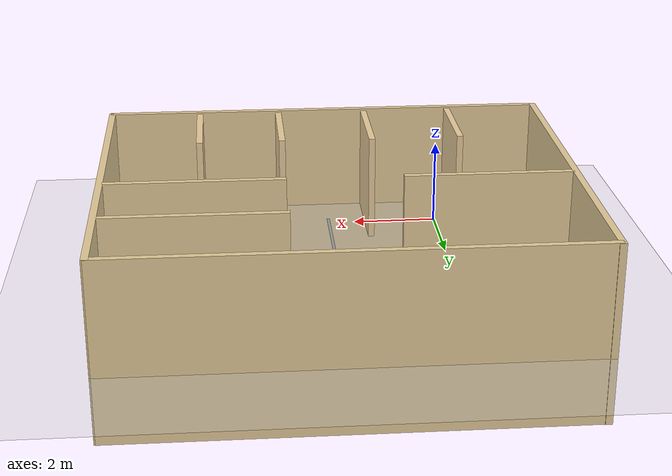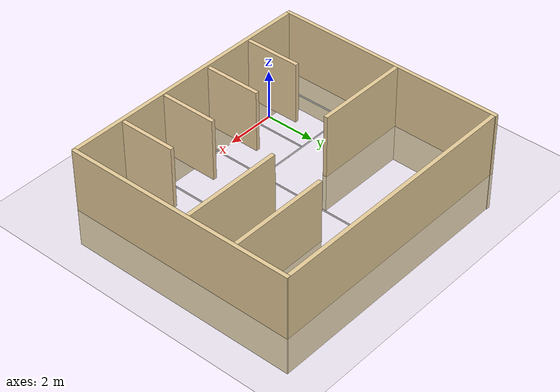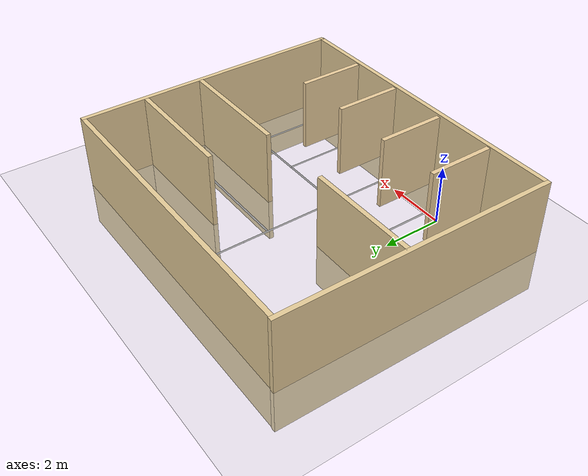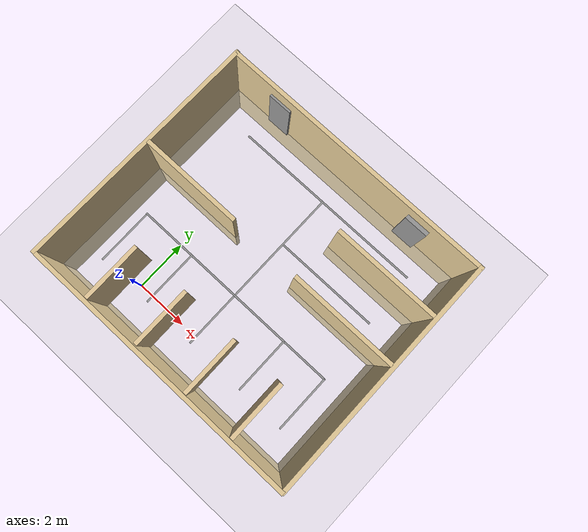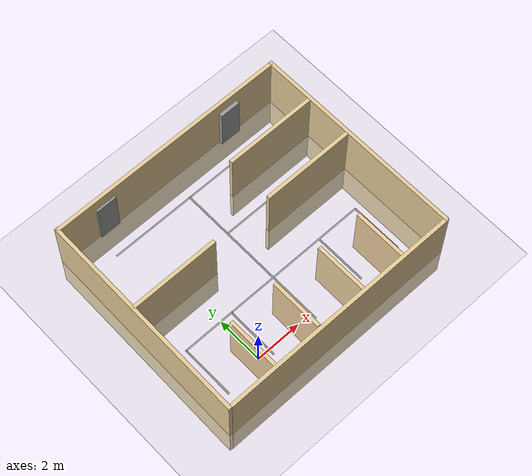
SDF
<?xml version="1.0"?>
<sdf version="1.6">
  <world name="default">

    <include>
      <uri>model://ground_plane</uri>
    </include>

    <include>
      <uri>model://sun</uri>
    </include>

    <scene>
      <shadows>false</shadows>
    </scene>

    <gui fullscreen='0'>
      <camera name='user_camera'>
        <pose frame=''>0.319654 -0.235002 9.29441 0 1.5138 0.009599</pose>
        <view_controller>orbit</view_controller>
        <projection_type>perspective</projection_type>
      </camera>
    </gui>

    <physics type="ode">
      <real_time_update_rate>1000.0</real_time_update_rate>
      <max_step_size>0.001</max_step_size>
      <real_time_factor>1</real_time_factor>
      <ode>
        <solver>
          <type>quick</type>
          <iters>150</iters>
          <precon_iters>0</precon_iters>
          <sor>1.400000</sor>
          <use_dynamic_moi_rescaling>1</use_dynamic_moi_rescaling>
        </solver>
        <constraints>
          <cfm>0.00001</cfm>
          <erp>0.2</erp>
          <contact_max_correcting_vel>2000.000000</contact_max_correcting_vel>
          <contact_surface_layer>0.01000</contact_surface_layer>
        </constraints>
      </ode>
    </physics>

    <model name="HospitalWalls">
      <static>1</static>
      <include>
        <uri>model://HospitalWalls</uri>
      </include>
    </model>

    <model name="HospitalTrack">
      <static>1</static>
      <include>
        <uri>model://HospitalTrack</uri>
      </include>
    </model>

  </world>
</sdf>

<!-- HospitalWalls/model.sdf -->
<sdf version='1.7'>
  <model name='HospitalWalls'>
    <link name='HospitalWalls::hospital_test::hospital_test::hospital_test::hospital_test::hospital_test::Door_0'>
      <pose>-0.47628 7.70771 0 0 -0 0</pose>
      <self_collide>0</self_collide>
      <enable_wind>0</enable_wind>
      <kinematic>0</kinematic>
      <visual name='Door_0_Visual'>
        <pose>0 0 1 0 -0 0</pose>
        <geometry>
          <box>
            <size>0.9 0.17 2</size>
          </box>
        </geometry>
        <material>
          <script>
            <uri>file://media/materials/scripts/gazebo.material</uri>
            <name>Gazebo/Grey</name>
          </script>
          <shader type='pixel'/>
        </material>
        <transparency>0</transparency>
        <cast_shadows>1</cast_shadows>
      </visual>
      <collision name='Door_0_Collision'>
        <laser_retro>0</laser_retro>
        <max_contacts>10</max_contacts>
        <pose>0 0 1 0 -0 0</pose>
        <geometry>
          <box>
            <size>0.9 0.17 2</size>
          </box>
        </geometry>
        <surface>
          <friction>
            <ode>
              <mu>1</mu>
              <mu2>1</mu2>
              <fdir1>0 0 0</fdir1>
              <slip1>0</slip1>
              <slip2>0</slip2>
            </ode>
            <torsional>
              <coefficient>1</coefficient>
              <patch_radius>0</patch_radius>
              <surface_radius>0</surface_radius>
              <use_patch_radius>1</use_patch_radius>
              <ode>
                <slip>0</slip>
              </ode>
            </torsional>
          </friction>
          <bounce>
            <restitution_coefficient>0</restitution_coefficient>
            <threshold>1e+06</threshold>
          </bounce>
          <contact>
            <collide_without_contact>0</collide_without_contact>
            <collide_without_contact_bitmask>1</collide_without_contact_bitmask>
            <collide_bitmask>1</collide_bitmask>
            <ode>
              <soft_cfm>0</soft_cfm>
              <soft_erp>0.2</soft_erp>
              <kp>1e+13</kp>
              <kd>1</kd>
              <max_vel>0.01</max_vel>
              <min_depth>0</min_depth>
            </ode>
            <bullet>
              <split_impulse>1</split_impulse>
              <split_impulse_penetration_threshold>-0.01</split_impulse_penetration_threshold>
              <soft_cfm>0</soft_cfm>
              <soft_erp>0.2</soft_erp>
              <kp>1e+13</kp>
              <kd>1</kd>
            </bullet>
          </contact>
        </surface>
      </collision>
    </link>
    <link name='HospitalWalls::hospital_test::hospital_test::hospital_test::hospital_test::Wall_15_clone'>
      <pose>5.78046 -0.214578 0 0 -0 1.5708</pose>
      <self_collide>0</self_collide>
      <enable_wind>0</enable_wind>
      <kinematic>0</kinematic>
      <visual name='Wall_15_Visual'>
        <pose>0 0 1.25 0 -0 0</pose>
        <geometry>
          <box>
            <size>2.25 0.15 2.5</size>
          </box>
        </geometry>
        <material>
          <script>
            <uri>file://media/materials/scripts/gazebo.material</uri>
            <name>Gazebo/Grey</name>
          </script>
          <ambient>0.921569 0.807843 0.615686 1</ambient>
          <shader type='pixel'/>
        </material>
        <meta>
          <layer>0</layer>
        </meta>
        <transparency>0</transparency>
        <cast_shadows>1</cast_shadows>
      </visual>
      <collision name='Wall_15_Collision'>
        <laser_retro>0</laser_retro>
        <max_contacts>10</max_contacts>
        <pose>0 0 1.25 0 -0 0</pose>
        <geometry>
          <box>
            <size>2.25 0.15 2.5</size>
          </box>
        </geometry>
        <surface>
          <friction>
            <ode>
              <mu>1</mu>
              <mu2>1</mu2>
              <fdir1>0 0 0</fdir1>
              <slip1>0</slip1>
              <slip2>0</slip2>
            </ode>
            <torsional>
              <coefficient>1</coefficient>
              <patch_radius>0</patch_radius>
              <surface_radius>0</surface_radius>
              <use_patch_radius>1</use_patch_radius>
              <ode>
                <slip>0</slip>
              </ode>
            </torsional>
          </friction>
          <bounce>
            <restitution_coefficient>0</restitution_coefficient>
            <threshold>1e+06</threshold>
          </bounce>
          <contact>
            <collide_without_contact>0</collide_without_contact>
            <collide_without_contact_bitmask>1</collide_without_contact_bitmask>
            <collide_bitmask>1</collide_bitmask>
            <ode>
              <soft_cfm>0</soft_cfm>
              <soft_erp>0.2</soft_erp>
              <kp>1e+13</kp>
              <kd>1</kd>
              <max_vel>0.01</max_vel>
              <min_depth>0</min_depth>
            </ode>
            <bullet>
              <split_impulse>1</split_impulse>
              <split_impulse_penetration_threshold>-0.01</split_impulse_penetration_threshold>
              <soft_cfm>0</soft_cfm>
              <soft_erp>0.2</soft_erp>
              <kp>1e+13</kp>
              <kd>1</kd>
            </bullet>
          </contact>
        </surface>
      </collision>
    </link>
    <link name='HospitalWalls::hospital_test::hospital_test::hospital_test::hospital_test::hospital_test::Door_1'>
      <pose>5.60707 7.63831 0 0 -0 0</pose>
      <self_collide>0</self_collide>
      <enable_wind>0</enable_wind>
      <kinematic>0</kinematic>
      <visual name='Door_1_Visual'>
        <pose>0 0 1 0 -0 0</pose>
        <geometry>
          <box>
            <size>0.9 0.17 2</size>
          </box>
        </geometry>
        <material>
          <script>
            <uri>file://media/materials/scripts/gazebo.material</uri>
            <name>Gazebo/Grey</name>
          </script>
          <shader type='pixel'/>
        </material>
        <transparency>0</transparency>
        <cast_shadows>1</cast_shadows>
      </visual>
      <collision name='Door_1_Collision'>
        <laser_retro>0</laser_retro>
        <max_contacts>10</max_contacts>
        <pose>0 0 1 0 -0 0</pose>
        <geometry>
          <box>
            <size>0.9 0.17 2</size>
          </box>
        </geometry>
        <surface>
          <friction>
            <ode>
              <mu>1</mu>
              <mu2>1</mu2>
              <fdir1>0 0 0</fdir1>
              <slip1>0</slip1>
              <slip2>0</slip2>
            </ode>
            <torsional>
              <coefficient>1</coefficient>
              <patch_radius>0</patch_radius>
              <surface_radius>0</surface_radius>
              <use_patch_radius>1</use_patch_radius>
              <ode>
                <slip>0</slip>
              </ode>
            </torsional>
          </friction>
          <bounce>
            <restitution_coefficient>0</restitution_coefficient>
            <threshold>1e+06</threshold>
          </bounce>
          <contact>
            <collide_without_contact>0</collide_without_contact>
            <collide_without_contact_bitmask>1</collide_without_contact_bitmask>
            <collide_bitmask>1</collide_bitmask>
            <ode>
              <soft_cfm>0</soft_cfm>
              <soft_erp>0.2</soft_erp>
              <kp>1e+13</kp>
              <kd>1</kd>
              <max_vel>0.01</max_vel>
              <min_depth>0</min_depth>
            </ode>
            <bullet>
              <split_impulse>1</split_impulse>
              <split_impulse_penetration_threshold>-0.01</split_impulse_penetration_threshold>
              <soft_cfm>0</soft_cfm>
              <soft_erp>0.2</soft_erp>
              <kp>1e+13</kp>
              <kd>1</kd>
            </bullet>
          </contact>
        </surface>
      </collision>
    </link>
    <link name='HospitalWalls::hospital_test::hospital_test::hospital_test::hospital_test::hospital_test::Wall_10'>
      <pose>-0.455438 -0.216971 0 0 -0 1.5708</pose>
      <self_collide>0</self_collide>
      <enable_wind>0</enable_wind>
      <kinematic>0</kinematic>
      <visual name='Wall_10_Visual'>
        <pose>0 0 1.25 0 -0 0</pose>
        <geometry>
          <box>
            <size>2.25 0.15 2.5</size>
          </box>
        </geometry>
        <material>
          <script>
            <uri>file://media/materials/scripts/gazebo.material</uri>
            <name>Gazebo/Grey</name>
          </script>
          <ambient>0.921569 0.807843 0.615686 1</ambient>
          <shader type='pixel'/>
        </material>
        <meta>
          <layer>0</layer>
        </meta>
        <transparency>0</transparency>
        <cast_shadows>1</cast_shadows>
      </visual>
      <collision name='Wall_10_Collision'>
        <laser_retro>0</laser_retro>
        <max_contacts>10</max_contacts>
        <pose>0 0 1.25 0 -0 0</pose>
        <geometry>
          <box>
            <size>2.25 0.15 2.5</size>
          </box>
        </geometry>
        <surface>
          <friction>
            <ode>
              <mu>1</mu>
              <mu2>1</mu2>
              <fdir1>0 0 0</fdir1>
              <slip1>0</slip1>
              <slip2>0</slip2>
            </ode>
            <torsional>
              <coefficient>1</coefficient>
              <patch_radius>0</patch_radius>
              <surface_radius>0</surface_radius>
              <use_patch_radius>1</use_patch_radius>
              <ode>
                <slip>0</slip>
              </ode>
            </torsional>
          </friction>
          <bounce>
            <restitution_coefficient>0</restitution_coefficient>
            <threshold>1e+06</threshold>
          </bounce>
          <contact>
            <collide_without_contact>0</collide_without_contact>
            <collide_without_contact_bitmask>1</collide_without_contact_bitmask>
            <collide_bitmask>1</collide_bitmask>
            <ode>
              <soft_cfm>0</soft_cfm>
              <soft_erp>0.2</soft_erp>
              <kp>1e+13</kp>
              <kd>1</kd>
              <max_vel>0.01</max_vel>
              <min_depth>0</min_depth>
            </ode>
            <bullet>
              <split_impulse>1</split_impulse>
              <split_impulse_penetration_threshold>-0.01</split_impulse_penetration_threshold>
              <soft_cfm>0</soft_cfm>
              <soft_erp>0.2</soft_erp>
              <kp>1e+13</kp>
              <kd>1</kd>
            </bullet>
          </contact>
        </surface>
      </collision>
    </link>
    <link name='HospitalWalls::hospital_test::hospital_test::hospital_test::hospital_test::hospital_test::Wall_12'>
      <pose>1.67297 -0.170712 0 0 -0 1.5708</pose>
      <self_collide>0</self_collide>
      <enable_wind>0</enable_wind>
      <kinematic>0</kinematic>
      <visual name='Wall_12_Visual'>
        <pose>0 0 1.25 0 -0 0</pose>
        <geometry>
          <box>
            <size>2.25 0.15 2.5</size>
          </box>
        </geometry>
        <material>
          <script>
            <uri>file://media/materials/scripts/gazebo.material</uri>
            <name>Gazebo/Grey</name>
          </script>
          <ambient>0.921569 0.807843 0.615686 1</ambient>
          <shader type='pixel'/>
        </material>
        <meta>
          <layer>0</layer>
        </meta>
        <transparency>0</transparency>
        <cast_shadows>1</cast_shadows>
      </visual>
      <collision name='Wall_12_Collision'>
        <laser_retro>0</laser_retro>
        <max_contacts>10</max_contacts>
        <pose>0 0 1.25 0 -0 0</pose>
        <geometry>
          <box>
            <size>2.25 0.15 2.5</size>
          </box>
        </geometry>
        <surface>
          <friction>
            <ode>
              <mu>1</mu>
              <mu2>1</mu2>
              <fdir1>0 0 0</fdir1>
              <slip1>0</slip1>
              <slip2>0</slip2>
            </ode>
            <torsional>
              <coefficient>1</coefficient>
              <patch_radius>0</patch_radius>
              <surface_radius>0</surface_radius>
              <use_patch_radius>1</use_patch_radius>
              <ode>
                <slip>0</slip>
              </ode>
            </torsional>
          </friction>
          <bounce>
            <restitution_coefficient>0</restitution_coefficient>
            <threshold>1e+06</threshold>
          </bounce>
          <contact>
            <collide_without_contact>0</collide_without_contact>
            <collide_without_contact_bitmask>1</collide_without_contact_bitmask>
            <collide_bitmask>1</collide_bitmask>
            <ode>
              <soft_cfm>0</soft_cfm>
              <soft_erp>0.2</soft_erp>
              <kp>1e+13</kp>
              <kd>1</kd>
              <max_vel>0.01</max_vel>
              <min_depth>0</min_depth>
            </ode>
            <bullet>
              <split_impulse>1</split_impulse>
              <split_impulse_penetration_threshold>-0.01</split_impulse_penetration_threshold>
              <soft_cfm>0</soft_cfm>
              <soft_erp>0.2</soft_erp>
              <kp>1e+13</kp>
              <kd>1</kd>
            </bullet>
          </contact>
        </surface>
      </collision>
    </link>
    <link name='HospitalWalls::hospital_test::hospital_test::hospital_test::hospital_test::hospital_test::Wall_15'>
      <pose>3.82148 -0.216971 0 0 -0 1.5708</pose>
      <self_collide>0</self_collide>
      <enable_wind>0</enable_wind>
      <kinematic>0</kinematic>
      <gravity>1</gravity>
      <inertial>
        <mass>1</mass>
        <pose>0 0 0 0 -0 0</pose>
        <inertia>
          <ixx>1</ixx>
          <ixy>0</ixy>
          <ixz>0</ixz>
          <iyy>1</iyy>
          <iyz>0</iyz>
          <izz>1</izz>
        </inertia>
      </inertial>
      <visual name='Wall_15_Visual'>
        <pose>0 0 1.25 0 -0 0</pose>
        <geometry>
          <box>
            <size>2.25 0.15 2.5</size>
          </box>
        </geometry>
        <material>
          <script>
            <uri>file://media/materials/scripts/gazebo.material</uri>
            <name>Gazebo/Grey</name>
          </script>
          <ambient>0.922 0.808 0.616 1</ambient>
          <shader type='pixel'>
            <normal_map>__default__</normal_map>
          </shader>
        </material>
        <meta>
          <layer>0</layer>
        </meta>
        <transparency>0</transparency>
        <cast_shadows>1</cast_shadows>
      </visual>
      <collision name='Wall_15_Collision'>
        <laser_retro>0</laser_retro>
        <max_contacts>10</max_contacts>
        <pose>0 0 1.25 0 -0 0</pose>
        <geometry>
          <box>
            <size>2.25 0.15 2.5</size>
          </box>
        </geometry>
        <surface>
          <friction>
            <ode>
              <mu>1</mu>
              <mu2>1</mu2>
              <fdir1>0 0 0</fdir1>
              <slip1>0</slip1>
              <slip2>0</slip2>
            </ode>
            <torsional>
              <coefficient>1</coefficient>
              <patch_radius>0</patch_radius>
              <surface_radius>0</surface_radius>
              <use_patch_radius>1</use_patch_radius>
              <ode>
                <slip>0</slip>
              </ode>
            </torsional>
          </friction>
          <bounce>
            <restitution_coefficient>0</restitution_coefficient>
            <threshold>1e+06</threshold>
          </bounce>
          <contact>
            <collide_without_contact>0</collide_without_contact>
            <collide_without_contact_bitmask>1</collide_without_contact_bitmask>
            <collide_bitmask>1</collide_bitmask>
            <ode>
              <soft_cfm>0</soft_cfm>
              <soft_erp>0.2</soft_erp>
              <kp>1e+13</kp>
              <kd>1</kd>
              <max_vel>0.01</max_vel>
              <min_depth>0</min_depth>
            </ode>
            <bullet>
              <split_impulse>1</split_impulse>
              <split_impulse_penetration_threshold>-0.01</split_impulse_penetration_threshold>
              <soft_cfm>0</soft_cfm>
              <soft_erp>0.2</soft_erp>
              <kp>1e+13</kp>
              <kd>1</kd>
            </bullet>
          </contact>
        </surface>
      </collision>
    </link>
    <link name='HospitalWalls::link_0'>
      <inertial>
        <mass>6.75235</mass>
        <inertia>
          <ixx>9.38568</ixx>
          <ixy>0</ixy>
          <ixz>0</ixz>
          <iyy>72.7317</iyy>
          <iyz>0</iyz>
          <izz>63.3734</izz>
        </inertia>
        <pose>0 0 0 0 -0 0</pose>
      </inertial>
      <pose>2.68996 -1.41359 0.5 0 -0 0</pose>
      <self_collide>0</self_collide>
      <enable_wind>0</enable_wind>
      <kinematic>0</kinematic>
      <gravity>1</gravity>
      <visual name='visual'>
        <pose>0 0 0 0 -0 0</pose>
        <geometry>
          <box>
            <size>10.6113 0.156015 4.08112</size>
          </box>
        </geometry>
        <material>
          <lighting>1</lighting>
          <script>
            <uri>file://media/materials/scripts/gazebo.material</uri>
            <name>Gazebo/Grey</name>
          </script>
          <shader type='pixel'>
            <normal_map>__default__</normal_map>
          </shader>
          <ambient>0.9 0.8 0.6 1</ambient>
          <diffuse>0.7 0.7 0.7 1</diffuse>
          <specular>0.01 0.01 0.01 1</specular>
          <emissive>0 0 0 1</emissive>
        </material>
        <transparency>0</transparency>
        <cast_shadows>1</cast_shadows>
      </visual>
      <collision name='collision'>
        <laser_retro>0</laser_retro>
        <max_contacts>10</max_contacts>
        <pose>0 0 0 0 -0 0</pose>
        <geometry>
          <box>
            <size>10.6113 0.156015 4.08112</size>
          </box>
        </geometry>
        <surface>
          <friction>
            <ode>
              <mu>1</mu>
              <mu2>1</mu2>
              <fdir1>0 0 0</fdir1>
              <slip1>0</slip1>
              <slip2>0</slip2>
            </ode>
            <torsional>
              <coefficient>1</coefficient>
              <patch_radius>0</patch_radius>
              <surface_radius>0</surface_radius>
              <use_patch_radius>1</use_patch_radius>
              <ode>
                <slip>0</slip>
              </ode>
            </torsional>
          </friction>
          <bounce>
            <restitution_coefficient>0</restitution_coefficient>
            <threshold>1e+06</threshold>
          </bounce>
          <contact>
            <collide_without_contact>0</collide_without_contact>
            <collide_without_contact_bitmask>1</collide_without_contact_bitmask>
            <collide_bitmask>1</collide_bitmask>
            <ode>
              <soft_cfm>0</soft_cfm>
              <soft_erp>0.2</soft_erp>
              <kp>1e+13</kp>
              <kd>1</kd>
              <max_vel>0.01</max_vel>
              <min_depth>0</min_depth>
            </ode>
            <bullet>
              <split_impulse>1</split_impulse>
              <split_impulse_penetration_threshold>-0.01</split_impulse_penetration_threshold>
              <soft_cfm>0</soft_cfm>
              <soft_erp>0.2</soft_erp>
              <kp>1e+13</kp>
              <kd>1</kd>
            </bullet>
          </contact>
        </surface>
      </collision>
    </link>
    <link name='link_0_clone'>
      <inertial>
        <mass>6.75235</mass>
        <inertia>
          <ixx>9.38568</ixx>
          <ixy>0</ixy>
          <ixz>0</ixz>
          <iyy>72.7317</iyy>
          <iyz>0</iyz>
          <izz>63.3734</izz>
        </inertia>
        <pose>0 0 0 0 -0 0</pose>
      </inertial>
      <pose>-2.63808 3.20368 0.5 0 0 -1.57962</pose>
      <self_collide>0</self_collide>
      <enable_wind>0</enable_wind>
      <kinematic>0</kinematic>
      <gravity>1</gravity>
      <visual name='visual'>
        <pose>0 0 0 0 -0 0</pose>
        <geometry>
          <box>
            <size>9.36494 0.156015 4.08112</size>
          </box>
        </geometry>
        <material>
          <lighting>1</lighting>
          <script>
            <uri>file://media/materials/scripts/gazebo.material</uri>
            <name>Gazebo/Grey</name>
          </script>
          <shader type='pixel'>
            <normal_map>__default__</normal_map>
          </shader>
          <ambient>0.9 0.8 0.6 1</ambient>
          <diffuse>0.7 0.7 0.7 1</diffuse>
          <specular>0.01 0.01 0.01 1</specular>
          <emissive>0 0 0 1</emissive>
        </material>
        <transparency>0</transparency>
        <cast_shadows>1</cast_shadows>
      </visual>
      <collision name='collision'>
        <laser_retro>0</laser_retro>
        <max_contacts>10</max_contacts>
        <pose>0 0 0 0 -0 0</pose>
        <geometry>
          <box>
            <size>9.36494 0.156015 4.08112</size>
          </box>
        </geometry>
        <surface>
          <friction>
            <ode>
              <mu>1</mu>
              <mu2>1</mu2>
              <fdir1>0 0 0</fdir1>
              <slip1>0</slip1>
              <slip2>0</slip2>
            </ode>
            <torsional>
              <coefficient>1</coefficient>
              <patch_radius>0</patch_radius>
              <surface_radius>0</surface_radius>
              <use_patch_radius>1</use_patch_radius>
              <ode>
                <slip>0</slip>
              </ode>
            </torsional>
          </friction>
          <bounce>
            <restitution_coefficient>0</restitution_coefficient>
            <threshold>1e+06</threshold>
          </bounce>
          <contact>
            <collide_without_contact>0</collide_without_contact>
            <collide_without_contact_bitmask>1</collide_without_contact_bitmask>
            <collide_bitmask>1</collide_bitmask>
            <ode>
              <soft_cfm>0</soft_cfm>
              <soft_erp>0.2</soft_erp>
              <kp>1e+13</kp>
              <kd>1</kd>
              <max_vel>0.01</max_vel>
              <min_depth>0</min_depth>
            </ode>
            <bullet>
              <split_impulse>1</split_impulse>
              <split_impulse_penetration_threshold>-0.01</split_impulse_penetration_threshold>
              <soft_cfm>0</soft_cfm>
              <soft_erp>0.2</soft_erp>
              <kp>1e+13</kp>
              <kd>1</kd>
            </bullet>
          </contact>
        </surface>
      </collision>
    </link>
    <link name='link_0_clone_0'>
      <inertial>
        <mass>6.75235</mass>
        <inertia>
          <ixx>9.38568</ixx>
          <ixy>0</ixy>
          <ixz>0</ixz>
          <iyy>72.7317</iyy>
          <iyz>0</iyz>
          <izz>63.3734</izz>
        </inertia>
        <pose>0 0 0 0 -0 0</pose>
      </inertial>
      <pose>-0.682959 3.62609 0.5 0 -0 0</pose>
      <self_collide>0</self_collide>
      <enable_wind>0</enable_wind>
      <kinematic>0</kinematic>
      <gravity>1</gravity>
      <visual name='visual'>
        <pose>0 0 0 0 -0 0</pose>
        <geometry>
          <box>
            <size>3.83284 0.156015 4.08112</size>
          </box>
        </geometry>
        <material>
          <lighting>1</lighting>
          <script>
            <uri>file://media/materials/scripts/gazebo.material</uri>
            <name>Gazebo/Grey</name>
          </script>
          <shader type='pixel'>
            <normal_map>__default__</normal_map>
          </shader>
          <ambient>0.9 0.8 0.6 1</ambient>
          <diffuse>0.7 0.7 0.7 1</diffuse>
          <specular>0.01 0.01 0.01 1</specular>
          <emissive>0 0 0 1</emissive>
        </material>
        <transparency>0</transparency>
        <cast_shadows>1</cast_shadows>
      </visual>
      <collision name='collision'>
        <laser_retro>0</laser_retro>
        <max_contacts>10</max_contacts>
        <pose>0 0 0 0 -0 0</pose>
        <geometry>
          <box>
            <size>3.83284 0.156015 4.08112</size>
          </box>
        </geometry>
        <surface>
          <friction>
            <ode>
              <mu>1</mu>
              <mu2>1</mu2>
              <fdir1>0 0 0</fdir1>
              <slip1>0</slip1>
              <slip2>0</slip2>
            </ode>
            <torsional>
              <coefficient>1</coefficient>
              <patch_radius>0</patch_radius>
              <surface_radius>0</surface_radius>
              <use_patch_radius>1</use_patch_radius>
              <ode>
                <slip>0</slip>
              </ode>
            </torsional>
          </friction>
          <bounce>
            <restitution_coefficient>0</restitution_coefficient>
            <threshold>1e+06</threshold>
          </bounce>
          <contact>
            <collide_without_contact>0</collide_without_contact>
            <collide_without_contact_bitmask>1</collide_without_contact_bitmask>
            <collide_bitmask>1</collide_bitmask>
            <ode>
              <soft_cfm>0</soft_cfm>
              <soft_erp>0.2</soft_erp>
              <kp>1e+13</kp>
              <kd>1</kd>
              <max_vel>0.01</max_vel>
              <min_depth>0</min_depth>
            </ode>
            <bullet>
              <split_impulse>1</split_impulse>
              <split_impulse_penetration_threshold>-0.01</split_impulse_penetration_threshold>
              <soft_cfm>0</soft_cfm>
              <soft_erp>0.2</soft_erp>
              <kp>1e+13</kp>
              <kd>1</kd>
            </bullet>
          </contact>
        </surface>
      </collision>
    </link>
    <link name='link_0_clone_1'>
      <inertial>
        <mass>6.75235</mass>
        <inertia>
          <ixx>9.38568</ixx>
          <ixy>0</ixy>
          <ixz>0</ixz>
          <iyy>72.7317</iyy>
          <iyz>0</iyz>
          <izz>63.3734</izz>
        </inertia>
        <pose>0 0 0 0 -0 0</pose>
      </inertial>
      <pose>5.86558 3.61726 0.5 0 -0 0</pose>
      <self_collide>0</self_collide>
      <enable_wind>0</enable_wind>
      <kinematic>0</kinematic>
      <gravity>1</gravity>
      <visual name='visual'>
        <pose>0 0 0 0 -0 0</pose>
        <geometry>
          <box>
            <size>4.03614 0.156015 4.08112</size>
          </box>
        </geometry>
        <material>
          <lighting>1</lighting>
          <script>
            <uri>file://media/materials/scripts/gazebo.material</uri>
            <name>Gazebo/Grey</name>
          </script>
          <shader type='pixel'>
            <normal_map>__default__</normal_map>
          </shader>
          <ambient>0.9 0.8 0.6 1</ambient>
          <diffuse>0.7 0.7 0.7 1</diffuse>
          <specular>0.01 0.01 0.01 1</specular>
          <emissive>0 0 0 1</emissive>
        </material>
        <transparency>0</transparency>
        <cast_shadows>1</cast_shadows>
      </visual>
      <collision name='collision'>
        <laser_retro>0</laser_retro>
        <max_contacts>10</max_contacts>
        <pose>0 0 0 0 -0 0</pose>
        <geometry>
          <box>
            <size>4.03614 0.156015 4.08112</size>
          </box>
        </geometry>
        <surface>
          <friction>
            <ode>
              <mu>1</mu>
              <mu2>1</mu2>
              <fdir1>0 0 0</fdir1>
              <slip1>0</slip1>
              <slip2>0</slip2>
            </ode>
            <torsional>
              <coefficient>1</coefficient>
              <patch_radius>0</patch_radius>
              <surface_radius>0</surface_radius>
              <use_patch_radius>1</use_patch_radius>
              <ode>
                <slip>0</slip>
              </ode>
            </torsional>
          </friction>
          <bounce>
            <restitution_coefficient>0</restitution_coefficient>
            <threshold>1e+06</threshold>
          </bounce>
          <contact>
            <collide_without_contact>0</collide_without_contact>
            <collide_without_contact_bitmask>1</collide_without_contact_bitmask>
            <collide_bitmask>1</collide_bitmask>
            <ode>
              <soft_cfm>0</soft_cfm>
              <soft_erp>0.2</soft_erp>
              <kp>1e+13</kp>
              <kd>1</kd>
              <max_vel>0.01</max_vel>
              <min_depth>0</min_depth>
            </ode>
            <bullet>
              <split_impulse>1</split_impulse>
              <split_impulse_penetration_threshold>-0.01</split_impulse_penetration_threshold>
              <soft_cfm>0</soft_cfm>
              <soft_erp>0.2</soft_erp>
              <kp>1e+13</kp>
              <kd>1</kd>
            </bullet>
          </contact>
        </surface>
      </collision>
    </link>
    <link name='link_0_clone_2'>
      <inertial>
        <mass>6.75235</mass>
        <inertia>
          <ixx>9.38568</ixx>
          <ixy>0</ixy>
          <ixz>0</ixz>
          <iyy>72.7317</iyy>
          <iyz>0</iyz>
          <izz>63.3734</izz>
        </inertia>
        <pose>0 0 0 0 -0 0</pose>
      </inertial>
      <pose>5.86453 5.63823 0.5 0 -0 0</pose>
      <self_collide>0</self_collide>
      <enable_wind>0</enable_wind>
      <kinematic>0</kinematic>
      <gravity>1</gravity>
      <visual name='visual'>
        <pose>0 0 0 0 -0 0</pose>
        <geometry>
          <box>
            <size>3.99278 0.156015 4.08112</size>
          </box>
        </geometry>
        <material>
          <lighting>1</lighting>
          <script>
            <uri>file://media/materials/scripts/gazebo.material</uri>
            <name>Gazebo/Grey</name>
          </script>
          <shader type='pixel'>
            <normal_map>__default__</normal_map>
          </shader>
          <ambient>0.9 0.8 0.6 1</ambient>
          <diffuse>0.7 0.7 0.7 1</diffuse>
          <specular>0.01 0.01 0.01 1</specular>
          <emissive>0 0 0 1</emissive>
        </material>
        <transparency>0</transparency>
        <cast_shadows>1</cast_shadows>
      </visual>
      <collision name='collision'>
        <laser_retro>0</laser_retro>
        <max_contacts>10</max_contacts>
        <pose>0 0 0 0 -0 0</pose>
        <geometry>
          <box>
            <size>3.99278 0.156015 4.08112</size>
          </box>
        </geometry>
        <surface>
          <friction>
            <ode>
              <mu>1</mu>
              <mu2>1</mu2>
              <fdir1>0 0 0</fdir1>
              <slip1>0</slip1>
              <slip2>0</slip2>
            </ode>
            <torsional>
              <coefficient>1</coefficient>
              <patch_radius>0</patch_radius>
              <surface_radius>0</surface_radius>
              <use_patch_radius>1</use_patch_radius>
              <ode>
                <slip>0</slip>
              </ode>
            </torsional>
          </friction>
          <bounce>
            <restitution_coefficient>0</restitution_coefficient>
            <threshold>1e+06</threshold>
          </bounce>
          <contact>
            <collide_without_contact>0</collide_without_contact>
            <collide_without_contact_bitmask>1</collide_without_contact_bitmask>
            <collide_bitmask>1</collide_bitmask>
            <ode>
              <soft_cfm>0</soft_cfm>
              <soft_erp>0.2</soft_erp>
              <kp>1e+13</kp>
              <kd>1</kd>
              <max_vel>0.01</max_vel>
              <min_depth>0</min_depth>
            </ode>
            <bullet>
              <split_impulse>1</split_impulse>
              <split_impulse_penetration_threshold>-0.01</split_impulse_penetration_threshold>
              <soft_cfm>0</soft_cfm>
              <soft_erp>0.2</soft_erp>
              <kp>1e+13</kp>
              <kd>1</kd>
            </bullet>
          </contact>
        </surface>
      </collision>
    </link>
    <link name='link_0_clone_3'>
      <inertial>
        <mass>6.75235</mass>
        <inertia>
          <ixx>9.38568</ixx>
          <ixy>0</ixy>
          <ixz>0</ixz>
          <iyy>72.7317</iyy>
          <iyz>0</iyz>
          <izz>63.3734</izz>
        </inertia>
        <pose>0 0 0 0 -0 0</pose>
      </inertial>
      <pose>7.94591 3.19882 0.5 0 0 -1.56817</pose>
      <self_collide>0</self_collide>
      <enable_wind>0</enable_wind>
      <kinematic>0</kinematic>
      <gravity>1</gravity>
      <visual name='visual'>
        <pose>0 0 0 0 -0 0</pose>
        <geometry>
          <box>
            <size>9.31062 0.156015 4.08112</size>
          </box>
        </geometry>
        <material>
          <lighting>1</lighting>
          <script>
            <uri>file://media/materials/scripts/gazebo.material</uri>
            <name>Gazebo/Grey</name>
          </script>
          <shader type='pixel'>
            <normal_map>__default__</normal_map>
          </shader>
          <ambient>0.9 0.8 0.6 1</ambient>
          <diffuse>0.7 0.7 0.7 1</diffuse>
          <specular>0.01 0.01 0.01 1</specular>
          <emissive>0 0 0 1</emissive>
        </material>
        <transparency>0</transparency>
        <cast_shadows>1</cast_shadows>
      </visual>
      <collision name='collision'>
        <laser_retro>0</laser_retro>
        <max_contacts>10</max_contacts>
        <pose>0 0 0 0 -0 0</pose>
        <geometry>
          <box>
            <size>9.31062 0.156015 4.08112</size>
          </box>
        </geometry>
        <surface>
          <friction>
            <ode>
              <mu>1</mu>
              <mu2>1</mu2>
              <fdir1>0 0 0</fdir1>
              <slip1>0</slip1>
              <slip2>0</slip2>
            </ode>
            <torsional>
              <coefficient>1</coefficient>
              <patch_radius>0</patch_radius>
              <surface_radius>0</surface_radius>
              <use_patch_radius>1</use_patch_radius>
              <ode>
                <slip>0</slip>
              </ode>
            </torsional>
          </friction>
          <bounce>
            <restitution_coefficient>0</restitution_coefficient>
            <threshold>1e+06</threshold>
          </bounce>
          <contact>
            <collide_without_contact>0</collide_without_contact>
            <collide_without_contact_bitmask>1</collide_without_contact_bitmask>
            <collide_bitmask>1</collide_bitmask>
            <ode>
              <soft_cfm>0</soft_cfm>
              <soft_erp>0.2</soft_erp>
              <kp>1e+13</kp>
              <kd>1</kd>
              <max_vel>0.01</max_vel>
              <min_depth>0</min_depth>
            </ode>
            <bullet>
              <split_impulse>1</split_impulse>
              <split_impulse_penetration_threshold>-0.01</split_impulse_penetration_threshold>
              <soft_cfm>0</soft_cfm>
              <soft_erp>0.2</soft_erp>
              <kp>1e+13</kp>
              <kd>1</kd>
            </bullet>
          </contact>
        </surface>
      </collision>
    </link>
    <link name='link_0_clone_4'>
      <inertial>
        <mass>6.75235</mass>
        <inertia>
          <ixx>9.38568</ixx>
          <ixy>0</ixy>
          <ixz>0</ixz>
          <iyy>72.7317</iyy>
          <iyz>0</iyz>
          <izz>63.3734</izz>
        </inertia>
        <pose>0 0 0 0 -0 0</pose>
      </inertial>
      <pose>2.67506 7.78725 0.5 0 -0 0</pose>
      <self_collide>0</self_collide>
      <enable_wind>0</enable_wind>
      <kinematic>0</kinematic>
      <gravity>1</gravity>
      <visual name='visual'>
        <pose>0 0 0 0 -0 0</pose>
        <geometry>
          <box>
            <size>10.6113 0.156015 4.08112</size>
          </box>
        </geometry>
        <material>
          <lighting>1</lighting>
          <script>
            <uri>file://media/materials/scripts/gazebo.material</uri>
            <name>Gazebo/Grey</name>
          </script>
          <shader type='pixel'>
            <normal_map>__default__</normal_map>
          </shader>
          <ambient>0.9 0.8 0.6 1</ambient>
          <diffuse>0.7 0.7 0.7 1</diffuse>
          <specular>0.01 0.01 0.01 1</specular>
          <emissive>0 0 0 1</emissive>
        </material>
        <transparency>0</transparency>
        <cast_shadows>1</cast_shadows>
      </visual>
      <collision name='collision'>
        <laser_retro>0</laser_retro>
        <max_contacts>10</max_contacts>
        <pose>0 0 0 0 -0 0</pose>
        <geometry>
          <box>
            <size>10.6113 0.156015 4.08112</size>
          </box>
        </geometry>
        <surface>
          <friction>
            <ode>
              <mu>1</mu>
              <mu2>1</mu2>
              <fdir1>0 0 0</fdir1>
              <slip1>0</slip1>
              <slip2>0</slip2>
            </ode>
            <torsional>
              <coefficient>1</coefficient>
              <patch_radius>0</patch_radius>
              <surface_radius>0</surface_radius>
              <use_patch_radius>1</use_patch_radius>
              <ode>
                <slip>0</slip>
              </ode>
            </torsional>
          </friction>
          <bounce>
            <restitution_coefficient>0</restitution_coefficient>
            <threshold>1e+06</threshold>
          </bounce>
          <contact>
            <collide_without_contact>0</collide_without_contact>
            <collide_without_contact_bitmask>1</collide_without_contact_bitmask>
            <collide_bitmask>1</collide_bitmask>
            <ode>
              <soft_cfm>0</soft_cfm>
              <soft_erp>0.2</soft_erp>
              <kp>1e+13</kp>
              <kd>1</kd>
              <max_vel>0.01</max_vel>
              <min_depth>0</min_depth>
            </ode>
            <bullet>
              <split_impulse>1</split_impulse>
              <split_impulse_penetration_threshold>-0.01</split_impulse_penetration_threshold>
              <soft_cfm>0</soft_cfm>
              <soft_erp>0.2</soft_erp>
              <kp>1e+13</kp>
              <kd>1</kd>
            </bullet>
          </contact>
        </surface>
      </collision>
    </link>
    <static>1</static>
    <allow_auto_disable>1</allow_auto_disable>
  </model>
</sdf>

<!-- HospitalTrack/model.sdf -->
<sdf version='1.7'>
  <model name='HospitalTrack'>
    <link name='HospitalTrack::HospitalTrack::link_1'>
      <inertial>
        <mass>1</mass>
        <inertia>
          <ixx>0.166667</ixx>
          <ixy>0</ixy>
          <ixz>0</ixz>
          <iyy>0.166667</iyy>
          <iyz>0</iyz>
          <izz>0.166667</izz>
        </inertia>
        <pose>0 0 0 0 -0 0</pose>
      </inertial>
      <pose>2.83381 6.64842 0.0005 0 -0 0</pose>
      <gravity>0</gravity>
      <self_collide>0</self_collide>
      <kinematic>1</kinematic>
      <enable_wind>0</enable_wind>
      <visual name='visual'>
        <pose>0 0 0 0 -0 0</pose>
        <geometry>
          <box>
            <size>7.73052 0.07 0.0001</size>
          </box>
        </geometry>
        <material>
          <lighting>1</lighting>
          <script>
            <uri>file://media/materials/scripts/gazebo.material</uri>
            <name>Gazebo/Grey</name>
          </script>
          <shader type='pixel'>
            <normal_map>__default__</normal_map>
          </shader>
          <ambient>0 0 0 1</ambient>
          <diffuse>0 0 0 1</diffuse>
          <specular>0 0 0 1</specular>
          <emissive>0 0 0 1</emissive>
        </material>
        <transparency>0</transparency>
        <cast_shadows>1</cast_shadows>
      </visual>
    </link>
    <link name='HospitalTrack::HospitalTrack::link_1_clone'>
      <inertial>
        <mass>1</mass>
        <inertia>
          <ixx>0.166667</ixx>
          <ixy>0</ixy>
          <ixz>0</ixz>
          <iyy>0.166667</iyy>
          <iyz>0</iyz>
          <izz>0.166667</izz>
        </inertia>
        <pose>0 0 0 0 -0 0</pose>
      </inertial>
      <pose>2.6429 3.20341 0.0005 0 0 -1.57031</pose>
      <gravity>0</gravity>
      <self_collide>0</self_collide>
      <kinematic>1</kinematic>
      <enable_wind>0</enable_wind>
      <visual name='visual'>
        <pose>0 0 0 0 -0 0</pose>
        <geometry>
          <box>
            <size>6.96223 0.07 0.0001</size>
          </box>
        </geometry>
        <material>
          <lighting>1</lighting>
          <script>
            <uri>file://media/materials/scripts/gazebo.material</uri>
            <name>Gazebo/Grey</name>
          </script>
          <shader type='pixel'>
            <normal_map>__default__</normal_map>
          </shader>
          <ambient>0 0 0 1</ambient>
          <diffuse>0 0 0 1</diffuse>
          <specular>0 0 0 1</specular>
          <emissive>0 0 0 1</emissive>
        </material>
        <transparency>0</transparency>
        <cast_shadows>1</cast_shadows>
      </visual>
    </link>
    <link name='HospitalTrack::HospitalTrack::link_1_clone_0'>
      <inertial>
        <mass>1</mass>
        <inertia>
          <ixx>0.166667</ixx>
          <ixy>0</ixy>
          <ixz>0</ixz>
          <iyy>0.166667</iyy>
          <iyz>0</iyz>
          <izz>0.166667</izz>
        </inertia>
        <pose>0 0 0.0005 0 -0 0</pose>
      </inertial>
      <pose>2.60138 2.00558 0.0005 0 -0 0</pose>
      <gravity>0</gravity>
      <self_collide>0</self_collide>
      <kinematic>1</kinematic>
      <enable_wind>0</enable_wind>
      <visual name='visual'>
        <pose>0 0 0 0 -0 0</pose>
        <geometry>
          <box>
            <size>8.67375 0.07 0.0001</size>
          </box>
        </geometry>
        <material>
          <lighting>1</lighting>
          <script>
            <uri>file://media/materials/scripts/gazebo.material</uri>
            <name>Gazebo/Grey</name>
          </script>
          <shader type='pixel'>
            <normal_map>__default__</normal_map>
          </shader>
          <ambient>0 0 0 1</ambient>
          <diffuse>0 0 0 1</diffuse>
          <specular>0 0 0 1</specular>
          <emissive>0 0 0 1</emissive>
        </material>
        <transparency>0</transparency>
        <cast_shadows>1</cast_shadows>
      </visual>
    </link>
    <link name='HospitalTrack::HospitalTrack::link_1_clone_clone'>
      <inertial>
        <mass>1</mass>
        <inertia>
          <ixx>0.166667</ixx>
          <ixy>0</ixy>
          <ixz>0</ixz>
          <iyy>0.166667</iyy>
          <iyz>0</iyz>
          <izz>0.166667</izz>
        </inertia>
        <pose>0 0 0 0 -0 0</pose>
      </inertial>
      <pose>6.91969 0.872001 0.0005 0 0 -1.57031</pose>
      <gravity>0</gravity>
      <self_collide>0</self_collide>
      <kinematic>1</kinematic>
      <enable_wind>0</enable_wind>
      <visual name='visual'>
        <pose>0 0 0 0 -0 0</pose>
        <geometry>
          <box>
            <size>2.30561 0.07 0.0001</size>
          </box>
        </geometry>
        <material>
          <lighting>1</lighting>
          <script>
            <uri>file://media/materials/scripts/gazebo.material</uri>
            <name>Gazebo/Grey</name>
          </script>
          <shader type='pixel'>
            <normal_map>__default__</normal_map>
          </shader>
          <ambient>0 0 0 1</ambient>
          <diffuse>0 0 0 1</diffuse>
          <specular>0 0 0 1</specular>
          <emissive>0 0 0 1</emissive>
        </material>
        <transparency>0</transparency>
        <cast_shadows>1</cast_shadows>
      </visual>
    </link>
    <link name='HospitalTrack::HospitalTrack::link_1_clone_clone_clone'>
      <inertial>
        <mass>1</mass>
        <inertia>
          <ixx>0.166667</ixx>
          <ixy>0</ixy>
          <ixz>0</ixz>
          <iyy>0.166667</iyy>
          <iyz>0</iyz>
          <izz>0.166667</izz>
        </inertia>
        <pose>0 0 0.0001 0 -0 0</pose>
      </inertial>
      <pose>5.00777 0.885997 0.0005 0 0 -1.57031</pose>
      <gravity>0</gravity>
      <self_collide>0</self_collide>
      <kinematic>1</kinematic>
      <enable_wind>0</enable_wind>
      <visual name='visual'>
        <pose>0 0 0 0 -0 0</pose>
        <geometry>
          <box>
            <size>2.30561 0.07 0.0001</size>
          </box>
        </geometry>
        <material>
          <lighting>1</lighting>
          <script>
            <uri>file://media/materials/scripts/gazebo.material</uri>
            <name>Gazebo/Grey</name>
          </script>
          <shader type='pixel'>
            <normal_map>__default__</normal_map>
          </shader>
          <ambient>0 0 0 1</ambient>
          <diffuse>0 0 0 1</diffuse>
          <specular>0 0 0 1</specular>
          <emissive>0 0 0 1</emissive>
        </material>
        <transparency>0</transparency>
        <cast_shadows>1</cast_shadows>
      </visual>
    </link>
    <link name='HospitalTrack::HospitalTrack::link_1_clone_clone_clone_clone'>
      <inertial>
        <mass>1</mass>
        <inertia>
          <ixx>0.166667</ixx>
          <ixy>0</ixy>
          <ixz>0</ixz>
          <iyy>0.166667</iyy>
          <iyz>0</iyz>
          <izz>0.166667</izz>
        </inertia>
        <pose>0 0 0.0001 0 -0 0</pose>
      </inertial>
      <pose>0.533539 0.885676 0.0005 0 0 -1.57031</pose>
      <gravity>0</gravity>
      <self_collide>0</self_collide>
      <kinematic>1</kinematic>
      <enable_wind>0</enable_wind>
      <visual name='visual'>
        <pose>0 0 0 0 -0 0</pose>
        <geometry>
          <box>
            <size>2.30561 0.07 0.0001</size>
          </box>
        </geometry>
        <material>
          <lighting>1</lighting>
          <script>
            <uri>file://media/materials/scripts/gazebo.material</uri>
            <name>Gazebo/Grey</name>
          </script>
          <shader type='pixel'>
            <normal_map>__default__</normal_map>
          </shader>
          <ambient>0 0 0 1</ambient>
          <diffuse>0 0 0 1</diffuse>
          <specular>0 0 0 1</specular>
          <emissive>0 0 0 1</emissive>
        </material>
        <transparency>0</transparency>
        <cast_shadows>1</cast_shadows>
      </visual>
    </link>
    <link name='HospitalTrack::HospitalTrack::link_1_clone_clone_clone_clone_0'>
      <inertial>
        <mass>1</mass>
        <inertia>
          <ixx>0.166667</ixx>
          <ixy>0</ixy>
          <ixz>0</ixz>
          <iyy>0.166667</iyy>
          <iyz>0</iyz>
          <izz>0.166667</izz>
        </inertia>
        <pose>0 0 0.0005 0 -0 0</pose>
      </inertial>
      <pose>-1.69477 0.867919 0.0005 0 0 -1.57031</pose>
      <gravity>0</gravity>
      <self_collide>0</self_collide>
      <kinematic>1</kinematic>
      <enable_wind>0</enable_wind>
      <visual name='visual'>
        <pose>0 0 0 0 -0 0</pose>
        <geometry>
          <box>
            <size>2.30561 0.07 0.0001</size>
          </box>
        </geometry>
        <material>
          <lighting>1</lighting>
          <script>
            <uri>file://media/materials/scripts/gazebo.material</uri>
            <name>Gazebo/Grey</name>
          </script>
          <shader type='pixel'>
            <normal_map>__default__</normal_map>
          </shader>
          <ambient>0 0 0 1</ambient>
          <diffuse>0 0 0 1</diffuse>
          <specular>0 0 0 1</specular>
          <emissive>0 0 0 1</emissive>
        </material>
        <transparency>0</transparency>
        <cast_shadows>1</cast_shadows>
      </visual>
    </link>
    <link name='link_1_clone_1'>
      <inertial>
        <mass>1</mass>
        <inertia>
          <ixx>0.166667</ixx>
          <ixy>0</ixy>
          <ixz>0</ixz>
          <iyy>0.166667</iyy>
          <iyz>0</iyz>
          <izz>0.166667</izz>
        </inertia>
        <pose>0 0 0 0 -0 0</pose>
      </inertial>
      <pose>4.72959 4.51793 0.0005 0 -0 0</pose>
      <gravity>0</gravity>
      <self_collide>0</self_collide>
      <kinematic>1</kinematic>
      <enable_wind>0</enable_wind>
      <visual name='visual'>
        <pose>0 0 0 0 -0 0</pose>
        <geometry>
          <box>
            <size>4.12127 0.07 0.0001</size>
          </box>
        </geometry>
        <material>
          <lighting>1</lighting>
          <script>
            <uri>file://media/materials/scripts/gazebo.material</uri>
            <name>Gazebo/Grey</name>
          </script>
          <shader type='pixel'>
            <normal_map>__default__</normal_map>
          </shader>
          <ambient>0 0 0 1</ambient>
          <diffuse>0 0 0 1</diffuse>
          <specular>0 0 0 1</specular>
          <emissive>0 0 0 1</emissive>
        </material>
        <transparency>0</transparency>
        <cast_shadows>1</cast_shadows>
      </visual>
    </link>
    <static>1</static>
    <allow_auto_disable>1</allow_auto_disable>
  </model>
</sdf>
